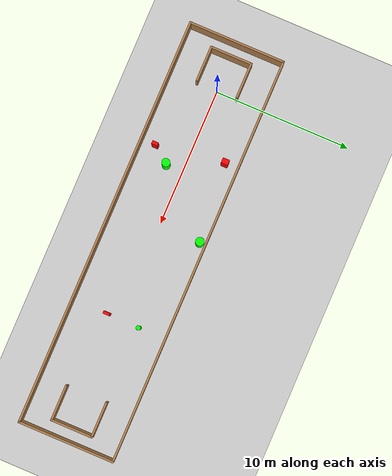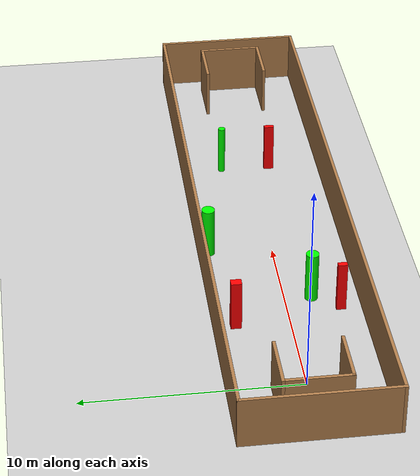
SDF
<sdf version="1.7">
 <world name="default">
  <light name="sun" type="directional">
   <pose>0 0 10 0 -0 0</pose>
   <diffuse>0.8 0.8 0.8 1</diffuse>
   <specular>0.2 0.2 0.2 1</specular>
   <attenuation>
    <range>1000</range>
    <constant>0.9</constant>
    <linear>0.01</linear>
    <quadratic>0.001</quadratic>
   </attenuation>
   <direction>-0.5 0.1 -0.9</direction>
   <spot><inner_angle>0</inner_angle><outer_angle>0</outer_angle><falloff>0</falloff></spot>
  </light>
  <model name="ground_plane">
   <static>1</static>
   <link name="link">
    <collision name="collision">
     <geometry><plane><normal>0 0 1</normal><size>100 100</size></plane></geometry>
     <surface>
      <contact><collide_bitmask>65535</collide_bitmask></contact>
      <friction><ode><mu>100</mu><mu2>50</mu2></ode></friction>
     </surface>
    </collision>
    <visual name="visual">
     <cast_shadows>0</cast_shadows>
     <geometry><plane><normal>0 0 1</normal><size>100 100</size></plane></geometry>
     <material>
      <script><uri>file://media/materials/scripts/gazebo.material</uri><name>Gazebo/Grey</name></script>
     </material>
    </visual>
   </link>
  </model>
  <gravity>0 0 -9.8</gravity>
  <magnetic_field>6e-06 2.3e-05 -4.2e-05</magnetic_field>
  <atmosphere type="adiabatic"/>
  <physics type="ode">
   <max_step_size>0.001</max_step_size>
   <real_time_factor>1</real_time_factor>
   <real_time_update_rate>1000</real_time_update_rate>
  </physics>
  <scene><ambient>0.4 0.4 0.4 1</ambient><background>0.7 0.7 0.7 1</background><shadows>1</shadows></scene>
  <spherical_coordinates>
   <surface_model>EARTH_WGS84</surface_model>
   <latitude_deg>0</latitude_deg>
   <longitude_deg>0</longitude_deg>
   <elevation>0</elevation>
   <heading_deg>0</heading_deg>
  </spherical_coordinates>
  <model name="my_base_walls">
   <link name="Wall_0">
    <collision name="Wall_0_Collision">
     <geometry><box><size>7.15 0.15 2.5</size></box></geometry>
     <pose>0 0 1.25 0 -0 0</pose>
    </collision>
    <visual name="Wall_0_Visual">
     <pose>0 0 1.25 0 -0 0</pose>
     <geometry><box><size>7.15 0.15 2.5</size></box></geometry>
     <material>
      <script><uri>file://media/materials/scripts/gazebo.material</uri><name>Gazebo/Wood</name></script>
      <ambient>1 1 1 1</ambient>
     </material>
     <meta><layer>0</layer></meta>
    </visual>
    <pose>-15 0 0 0 -0 1.5708</pose>
   </link>
   <link name="Wall_10">
    <collision name="Wall_10_Collision">
     <geometry><box><size>2.65 0.15 2.5</size></box></geometry>
     <pose>0 0 1.25 0 -0 0</pose>
    </collision>
    <visual name="Wall_10_Visual">
     <pose>0 0 1.25 0 -0 0</pose>
     <geometry><box><size>2.65 0.15 2.5</size></box></geometry>
     <material>
      <script><uri>file://media/materials/scripts/gazebo.material</uri><name>Gazebo/Wood</name></script>
      <ambient>1 1 1 1</ambient>
     </material>
     <meta><layer>0</layer></meta>
    </visual>
    <pose>-12.75 -1.5 0 0 -0 0</pose>
   </link>
   <link name="Wall_12">
    <collision name="Wall_12_Collision">
     <geometry><box><size>2.65 0.15 2.5</size></box></geometry>
     <pose>0 0 1.25 0 -0 0</pose>
    </collision>
    <visual name="Wall_12_Visual">
     <pose>0 0 1.25 0 -0 0</pose>
     <geometry><box><size>2.65 0.15 2.5</size></box></geometry>
     <material>
      <script><uri>file://media/materials/scripts/gazebo.material</uri><name>Gazebo/Wood</name></script>
      <ambient>1 1 1 1</ambient>
     </material>
     <meta><layer>0</layer></meta>
    </visual>
    <pose>-12.75 1.5 0 0 -0 0</pose>
   </link>
   <link name="Wall_14">
    <collision name="Wall_14_Collision">
     <geometry><box><size>3.15 0.15 2.5</size></box></geometry>
     <pose>0 0 1.25 0 -0 0</pose>
    </collision>
    <visual name="Wall_14_Visual">
     <pose>0 0 1.25 0 -0 0</pose>
     <geometry><box><size>3.15 0.15 2.5</size></box></geometry>
     <material>
      <script><uri>file://media/materials/scripts/gazebo.material</uri><name>Gazebo/Wood</name></script>
      <ambient>1 1 1 1</ambient>
     </material>
     <meta><layer>0</layer></meta>
    </visual>
    <pose>14 0 0 0 -0 -1.5708</pose>
   </link>
   <link name="Wall_15">
    <collision name="Wall_15_Collision">
     <geometry><box><size>2.65 0.15 2.5</size></box></geometry>
     <pose>0 0 1.25 0 -0 0</pose>
    </collision>
    <visual name="Wall_15_Visual">
     <pose>0 0 1.25 0 -0 0</pose>
     <geometry><box><size>2.65 0.15 2.5</size></box></geometry>
     <material>
      <script><uri>file://media/materials/scripts/gazebo.material</uri><name>Gazebo/Wood</name></script>
      <ambient>1 1 1 1</ambient>
     </material>
     <meta><layer>0</layer></meta>
    </visual>
    <pose>12.75 -1.5 0 0 -0 3.14159</pose>
   </link>
   <link name="Wall_17">
    <collision name="Wall_17_Collision">
     <geometry><box><size>2.65 0.15 2.5</size></box></geometry>
     <pose>0 0 1.25 0 -0 0</pose>
    </collision>
    <visual name="Wall_17_Visual">
     <pose>0 0 1.25 0 -0 0</pose>
     <geometry><box><size>2.65 0.15 2.5</size></box></geometry>
     <material>
      <script><uri>file://media/materials/scripts/gazebo.material</uri><name>Gazebo/Wood</name></script>
      <ambient>1 1 1 1</ambient>
     </material>
     <meta><layer>0</layer></meta>
    </visual>
    <pose>12.75 1.5 0 0 -0 3.14159</pose>
   </link>
   <link name="Wall_2">
    <collision name="Wall_2_Collision">
     <geometry><box><size>30.15 0.15 2.5</size></box></geometry>
     <pose>0 0 1.25 0 -0 0</pose>
    </collision>
    <visual name="Wall_2_Visual">
     <pose>0 0 1.25 0 -0 0</pose>
     <geometry><box><size>30.15 0.15 2.5</size></box></geometry>
     <material>
      <script><uri>file://media/materials/scripts/gazebo.material</uri><name>Gazebo/Wood</name></script>
      <ambient>1 1 1 1</ambient>
     </material>
     <meta><layer>0</layer></meta>
    </visual>
    <pose>-0 -3.5 0 0 -0 0</pose>
   </link>
   <link name="Wall_4">
    <collision name="Wall_4_Collision">
     <geometry><box><size>30.15 0.15 2.5</size></box></geometry>
     <pose>0 0 1.25 0 -0 0</pose>
    </collision>
    <visual name="Wall_4_Visual">
     <pose>0 0 1.25 0 -0 0</pose>
     <geometry><box><size>30.15 0.15 2.5</size></box></geometry>
     <material>
      <script><uri>file://media/materials/scripts/gazebo.material</uri><name>Gazebo/Wood</name></script>
      <ambient>1 1 1 1</ambient>
     </material>
     <meta><layer>0</layer></meta>
    </visual>
    <pose>-0 3.5 0 0 -0 0</pose>
   </link>
   <link name="Wall_6">
    <collision name="Wall_6_Collision">
     <geometry><box><size>7.15 0.15 2.5</size></box></geometry>
     <pose>0 0 1.25 0 -0 0</pose>
    </collision>
    <visual name="Wall_6_Visual">
     <pose>0 0 1.25 0 -0 0</pose>
     <geometry><box><size>7.15 0.15 2.5</size></box></geometry>
     <material>
      <script><uri>file://media/materials/scripts/gazebo.material</uri><name>Gazebo/Wood</name></script>
      <ambient>1 1 1 1</ambient>
     </material>
     <meta><layer>0</layer></meta>
    </visual>
    <pose>15 0 0 0 -0 -1.5708</pose>
   </link>
   <link name="Wall_9">
    <collision name="Wall_9_Collision">
     <geometry><box><size>3.15 0.15 2.5</size></box></geometry>
     <pose>0 0 1.25 0 -0 0</pose>
    </collision>
    <visual name="Wall_9_Visual">
     <pose>0 0 1.25 0 -0 0</pose>
     <geometry><box><size>3.15 0.15 2.5</size></box></geometry>
     <material>
      <script><uri>file://media/materials/scripts/gazebo.material</uri><name>Gazebo/Wood</name></script>
      <ambient>1 1 1 1</ambient>
     </material>
     <meta><layer>0</layer></meta>
    </visual>
    <pose>-14 0 0 0 -0 -1.5708</pose>
   </link>
   <static>1</static>
   <pose>11.5 0 0 0 -0 0</pose>
  </model>
  <model name="cylinder1">
   <static>1</static>
   <link name="link">
    <inertial>
     <mass>1</mass>
     <inertia><ixx>0.5</ixx><ixy>0</ixy><ixz>0</ixz><iyy>0.5</iyy><iyz>0</iyz><izz>1</izz></inertia>
    </inertial>
    <collision name="collision">
     <geometry><cylinder><radius>0.31489378144076596</radius><length>2.5</length></cylinder></geometry>
    </collision>
    <visual name="visual">
     <geometry><cylinder><radius>0.31489378144076596</radius><length>2.5</length></cylinder></geometry>
     <material>
      <ambient>0 1 0 1</ambient>
      <diffuse>0 1 0 1</diffuse>
      <specular>0.1 0.1 0.1 1</specular>
      <emissive>0 0 0 0</emissive>
     </material>
    </visual>
   </link>
   <pose>10.228884098822823 3.0611547471456904 1.25 0 0 0</pose>
  </model>
  <model name="cylinder2">
   <static>1</static>
   <link name="link">
    <inertial>
     <mass>1</mass>
     <inertia><ixx>0.5</ixx><ixy>0</ixy><ixz>0</ixz><iyy>0.5</iyy><iyz>0</iyz><izz>1</izz></inertia>
    </inertial>
    <collision name="collision">
     <geometry><cylinder><radius>0.1688339206387319</radius><length>2.5</length></cylinder></geometry>
    </collision>
    <visual name="visual">
     <geometry><cylinder><radius>0.1688339206387319</radius><length>2.5</length></cylinder></geometry>
     <material>
      <ambient>0 1 0 1</ambient>
      <diffuse>0 1 0 1</diffuse>
      <specular>0.1 0.1 0.1 1</specular>
      <emissive>0 0 0 0</emissive>
     </material>
    </visual>
   </link>
   <pose>17.353209754362535 1.491724157484894 1.25 0 0 0</pose>
  </model>
  <model name="cylinder3">
   <static>1</static>
   <link name="link">
    <inertial>
     <mass>1</mass>
     <inertia><ixx>0.5</ixx><ixy>0</ixy><ixz>0</ixz><iyy>0.5</iyy><iyz>0</iyz><izz>1</izz></inertia>
    </inertial>
    <collision name="collision">
     <geometry><cylinder><radius>0.3018806026749261</radius><length>2.5</length></cylinder></geometry>
    </collision>
    <visual name="visual">
     <geometry><cylinder><radius>0.3018806026749261</radius><length>2.5</length></cylinder></geometry>
     <material>
      <ambient>0 1 0 1</ambient>
      <diffuse>0 1 0 1</diffuse>
      <specular>0.1 0.1 0.1 1</specular>
      <emissive>0 0 0 0</emissive>
     </material>
    </visual>
   </link>
   <pose>6.11522758443164 -1.2401247294691506 1.25 0 0 0</pose>
  </model>
  <model name="box1">
   <static>1</static>
   <link name="link">
    <inertial>
     <mass>1</mass>
     <inertia><ixx>0.083</ixx><ixy>0</ixy><ixz>0</ixz><iyy>0.083</iyy><iyz>0</iyz><izz>0.083</izz></inertia>
    </inertial>
    <collision name="collision">
     <geometry><box><size>0.2510156901637215 0.4428823124198886 2.5</size></box></geometry>
    </collision>
    <visual name="visual">
     <geometry><box><size>0.2510156901637215 0.4428823124198886 2.5</size></box></geometry>
     <material>
      <ambient>1 0 0 1</ambient>
      <diffuse>1 0 0 1</diffuse>
      <specular>0.1 0.1 0.1 1</specular>
      <emissive>0 0 0 0</emissive>
     </material>
    </visual>
    <sensor name="my_contact" type="contact">
     <contact><collision>box_collision</collision><topic>__default_topic__</topic></contact>
    </sensor>
   </link>
   <pose>5.179156889321126 -2.4590233914440374 1.25 0 0 0</pose>
  </model>
  <model name="box2">
   <static>1</static>
   <link name="link">
    <inertial>
     <mass>1</mass>
     <inertia><ixx>0.083</ixx><ixy>0</ixy><ixz>0</ixz><iyy>0.083</iyy><iyz>0</iyz><izz>0.083</izz></inertia>
    </inertial>
    <collision name="collision">
     <geometry><box><size>0.20791633653467467 0.47991337064596035 2.5</size></box></geometry>
    </collision>
    <visual name="visual">
     <geometry><box><size>0.20791633653467467 0.47991337064596035 2.5</size></box></geometry>
     <material>
      <ambient>1 0 0 1</ambient>
      <diffuse>1 0 0 1</diffuse>
      <specular>0.1 0.1 0.1 1</specular>
      <emissive>0 0 0 0</emissive>
     </material>
    </visual>
    <sensor name="my_contact" type="contact">
     <contact><collision>box_collision</collision><topic>__default_topic__</topic></contact>
    </sensor>
   </link>
   <pose>17.286799971214215 -0.9174762279489701 1.25 0 0 0</pose>
  </model>
  <model name="box3">
   <static>1</static>
   <link name="link">
    <inertial>
     <mass>1</mass>
     <inertia><ixx>0.083</ixx><ixy>0</ixy><ixz>0</ixz><iyy>0.083</iyy><iyz>0</iyz><izz>0.083</izz></inertia>
    </inertial>
    <collision name="collision">
     <geometry><box><size>0.3902090414002466 0.49876380815921556 2.5</size></box></geometry>
    </collision>
    <visual name="visual">
     <geometry><box><size>0.3902090414002466 0.49876380815921556 2.5</size></box></geometry>
     <material>
      <ambient>1 0 0 1</ambient>
      <diffuse>1 0 0 1</diffuse>
      <specular>0.1 0.1 0.1 1</specular>
      <emissive>0 0 0 0</emissive>
     </material>
    </visual>
    <sensor name="my_contact" type="contact">
     <contact><collision>box_collision</collision><topic>__default_topic__</topic></contact>
    </sensor>
   </link>
   <pose>4.437660861388709 2.5125852368438135 1.25 0 0 0</pose>
  </model>
 </world>
</sdf>
